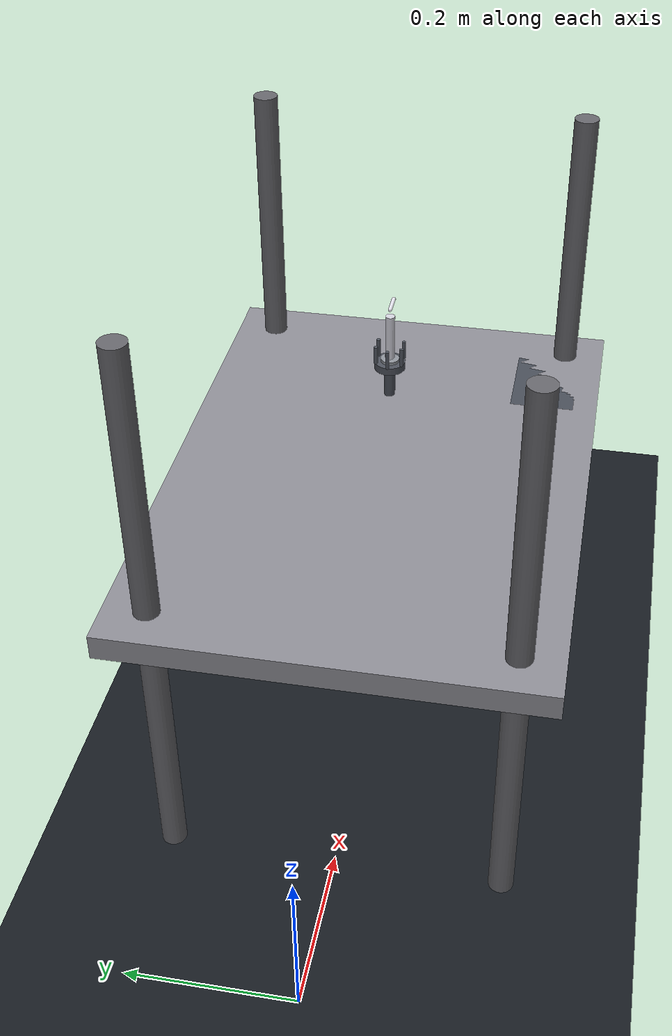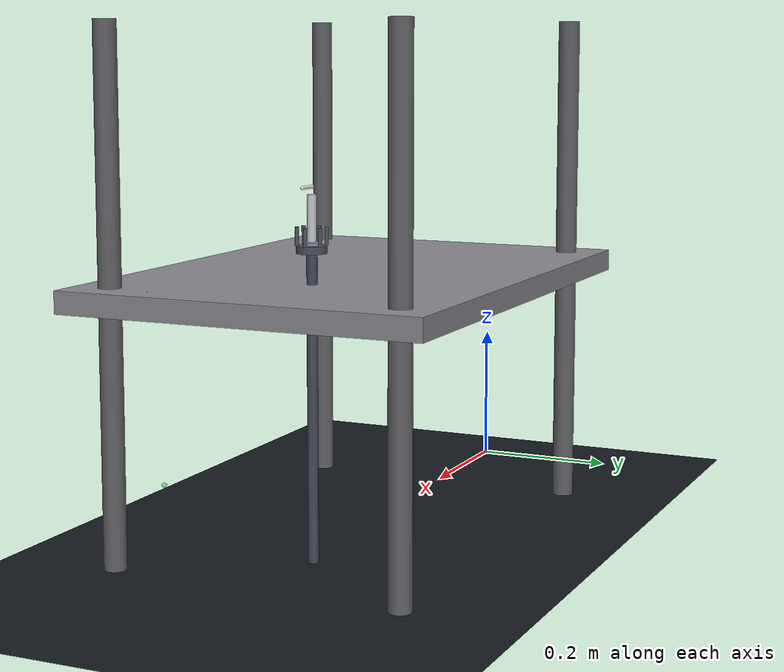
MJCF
<?xml version="1.0" encoding="utf-8"?>
<mujoco model="arsax_surgical_scene">

  <!-- GLOBAL PHYSICS / COMPILER -->
  <option
    timestep="0.002" iterations="100" tolerance="1e-8"
    gravity="0 0 -9.81" cone="elliptic" impratio="10"/>
  <compiler
    angle="radian" balanceinertia="true" autolimits="true"
    meshdir="vendor/mujoco_menagerie"/>

  <!-- VISUAL -->
  <visual>
    <global offwidth="1280" offheight="720"/>
    <headlight diffuse="0.6 0.6 0.6" ambient="0.3 0.3 0.3"/>
    <rgba haze="0.12 0.18 0.25 1"/>
    <quality shadowsize="2048" offsamples="4"/>
    <map znear="0.01" zfar="5.0"/>
  </visual>

  <!-- ASSETS -->
  <asset>
    <texture type="skybox" builtin="gradient"
             rgb1="0.35 0.55 0.70" rgb2="0.05 0.08 0.12"
             width="512" height="3072"/>
    <texture type="2d" name="floor_grid" builtin="checker" mark="edge"
             rgb1="0.12 0.14 0.16" rgb2="0.06 0.08 0.10"
             markrgb="0.25 0.28 0.32" width="512" height="512"/>
    <material name="floor_mat" texture="floor_grid"
              texuniform="true" texrepeat="8 8" reflectance="0.15"/>
    <material name="tissue_mat" rgba="0.72 0.32 0.26 0.92" specular="0.2"/>
    <material name="needle_mat" rgba="0.82 0.82 0.86 1.0" specular="0.6"/>
    <material name="table_mat" rgba="0.55 0.55 0.58 1.0" specular="0.4"/>
    <material name="stand_mat" rgba="0.28 0.30 0.34 1.0" specular="0.3"/>
  </asset>

  <!-- DEFAULTS -->
  <default>
    <geom type="box" condim="6" friction="0.8 0.05 0.005"
          solref="0.02 1.0" solimp="0.9 0.95 0.001"/>
    <joint type="hinge" damping="0.02" armature="0.001"/>
    <position kp="5.0" kv="0.0" ctrllimited="true" forcerange="-10 10"/>
    <site size="0.003" rgba="0.2 0.8 0.3 0.5"/>
  </default>

  <!-- WORLDBODY -->
  <worldbody>

    <!-- Floor -->
    <geom name="floor" type="plane" size="0 0 0.05" material="floor_mat"
          contype="1" conaffinity="1"/>

    <!-- Surgical table -->
    <body name="table" pos="0.5 0 0">
      <geom name="table_top" type="box" size="0.35 0.25 0.015" pos="0 0 0.35"
            material="table_mat" contype="3" conaffinity="3"/>
      <geom name="table_leg_nw" type="cylinder" size="0.015 0.35"
            pos="-0.30 -0.20 0.35" rgba="0.4 0.4 0.42 1" contype="3" conaffinity="3"/>
      <geom name="table_leg_ne" type="cylinder" size="0.015 0.35"
            pos="-0.30 0.20 0.35" rgba="0.4 0.4 0.42 1" contype="3" conaffinity="3"/>
      <geom name="table_leg_sw" type="cylinder" size="0.015 0.35"
            pos="0.30 -0.20 0.35" rgba="0.4 0.4 0.42 1" contype="3" conaffinity="3"/>
      <geom name="table_leg_se" type="cylinder" size="0.015 0.35"
            pos="0.30 0.20 0.35" rgba="0.4 0.4 0.42 1" contype="3" conaffinity="3"/>
    </body>

    <!-- Needle presentation stand -->
    <body name="needle_stand" pos="0.666 0.017 0">
      <geom name="stand_post" type="cylinder" size="0.007 0.205" pos="0 0 0.205"
            material="stand_mat" contype="1" conaffinity="1"/>
      <geom name="stand_saddle" type="cylinder" size="0.020 0.005" pos="0 0 0.410"
            rgba="0.30 0.32 0.36 1.0" condim="3" friction="0.5 0.02 0.001"
            contype="1" conaffinity="1"/>
      <geom name="socket_post_0" type="cylinder" size="0.0025 0.012"
            pos="0.019 0 0.427" rgba="0.32 0.34 0.38 1.0"
            condim="3" friction="0.3 0.02 0.001"/>
      <geom name="socket_post_1" type="cylinder" size="0.0025 0.012"
            pos="0.0095 0.0165 0.427" rgba="0.32 0.34 0.38 1.0"
            condim="3" friction="0.3 0.02 0.001"/>
      <geom name="socket_post_2" type="cylinder" size="0.0025 0.012"
            pos="-0.0095 0.0165 0.427" rgba="0.32 0.34 0.38 1.0"
            condim="3" friction="0.3 0.02 0.001"/>
      <geom name="socket_post_3" type="cylinder" size="0.0025 0.012"
            pos="-0.019 0 0.427" rgba="0.32 0.34 0.38 1.0"
            condim="3" friction="0.3 0.02 0.001"/>
      <geom name="socket_post_4" type="cylinder" size="0.0025 0.012"
            pos="-0.0095 -0.0165 0.427" rgba="0.32 0.34 0.38 1.0"
            condim="3" friction="0.3 0.02 0.001"/>
      <geom name="socket_post_5" type="cylinder" size="0.0025 0.012"
            pos="0.0095 -0.0165 0.427" rgba="0.32 0.34 0.38 1.0"
            condim="3" friction="0.3 0.02 0.001"/>
    </body>

    <!-- Surgical needle (free joint, graspable) -->
    <body name="needle" pos="0.666 0.017 0.45">
      <joint name="needle_freejoint" type="free"/>
      <geom name="needle_geom" type="cylinder" size="0.006 0.030" pos="0 0 0"
            material="needle_mat" condim="6" friction="3.5 0.1 0.01"
            solref="0.01 1.0" solimp="0.95 0.99 0.001 0.5 2.0"
            mass="0.01" contype="1" conaffinity="1"/>
      <geom name="needle_base" type="cylinder" size="0.012 0.004" pos="0 0 -0.035"
            rgba="0.55 0.57 0.60 1.0" condim="3" mass="0.015"/>
      <geom name="needle_tip" type="capsule" size="0.0025 0.014" pos="0.012 0 0.040"
            quat="0.7071 0 0.7071 0" rgba="0.9 0.9 0.94 1.0"
            condim="6" friction="2.5 0.05 0.005" mass="0.001"/>
      <geom name="suture_geom" type="capsule" size="0.0008 0.05" pos="0 0 -0.075"
            rgba="0.9 0.9 0.2 0.8" contype="0" conaffinity="0"/>
    </body>

    <!-- Instruments tray -->
    <body name="tray" pos="0.75 -0.18 0.36">
      <geom name="tray_base" type="box" size="0.08 0.04 0.005"
            material="stand_mat"/>
    </body>

    <!-- Lights (3) -->
    <light name="light_dome" pos="0.5 -0.8 1.5" dir="0 0.6 -1.0"
           diffuse="0.7 0.7 0.7" ambient="0.15 0.15 0.15" castshadow="true"/>
    <light name="light_surgical" pos="0.4 0.0 1.2" dir="0 0 -1.0"
           diffuse="0.9 0.85 0.8" ambient="0.05 0.05 0.05"
           cutoff="45" exponent="3" castshadow="true"/>
    <light name="light_fill" pos="-0.3 0.6 0.8" dir="0.5 -0.3 -1.0"
           diffuse="0.5 0.5 0.55" ambient="0 0 0" cutoff="60" exponent="2"/>

    <!-- Cameras (6 surgical views) -->
    <camera name="cam_wide" pos="0.80 -0.90 1.10"
            xyaxes="0.9320 0.3624 -0.0000 -0.2127 0.5470 0.8097"/>
    <camera name="cam_overhead" pos="0.45 -0.15 1.50"
            xyaxes="1.0000 0.0000 -0.0000 0.0000 0.9913 0.1316"/>
    <camera name="cam_closeup" pos="0.72 -0.50 0.60"
            xyaxes="0.9946 0.1039 -0.0000 -0.0270 0.2587 0.9656"/>
    <camera name="cam_endoscopic" pos="0.30 -0.45 0.75"
            xyaxes="0.9285 -0.3714 0.0000 0.2292 0.5729 0.7870"/>
    <camera name="cam_side" pos="1.0 0.40 0.80"
            xyaxes="-0.5882 0.8087 0.0000 -0.4322 -0.3143 0.8452"/>
    <!-- Bimanual overhead view — both arms visible -->
    <camera name="cam_bimanual" pos="0.45 -1.20 1.40"
            xyaxes="1.0000 0.0000 0.0000 0.0000 0.9124 0.4093"/>

    <!-- Assistant arm mounting point (bimanual mode) -->
    <!-- Moved further back (x=1.0) and raised (z=0.18) to avoid table intersection -->
    <body name="assistant_robot_root" pos="1.0 0 0.18">
      <site name="assistant_attach_site"/>
    </body>

    <!-- Robot mounting point -->
    <body name="robot_root" pos="0.08 0 0">
      <site name="robot_attach_site"/>
    </body>

  </worldbody>

</mujoco>
